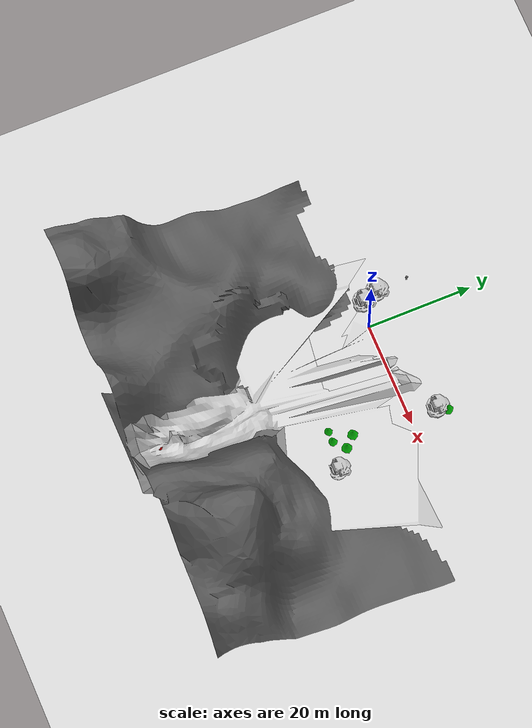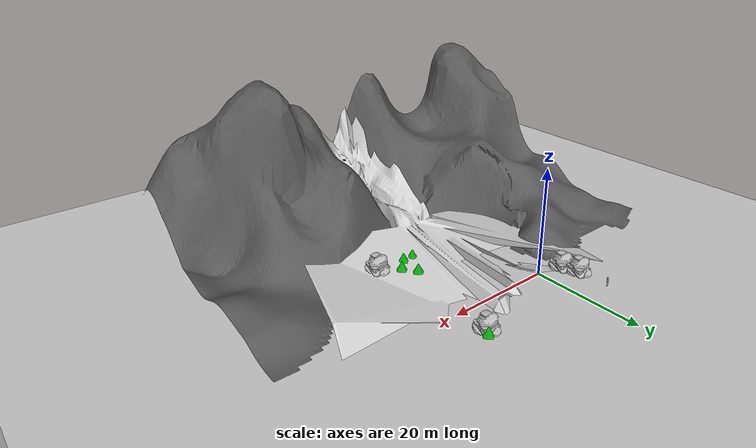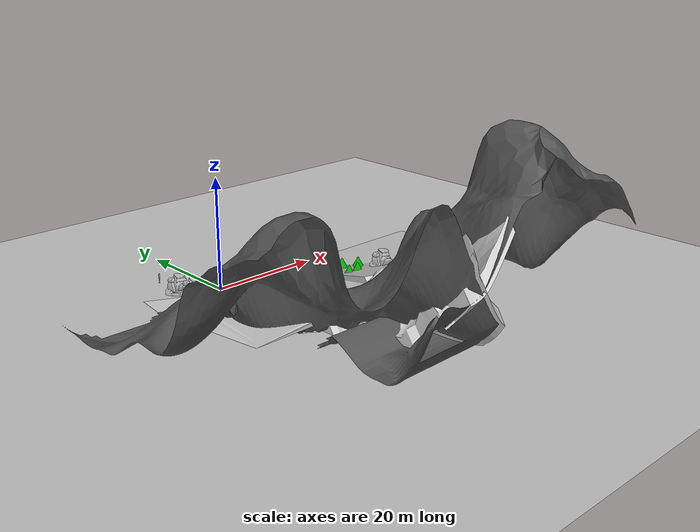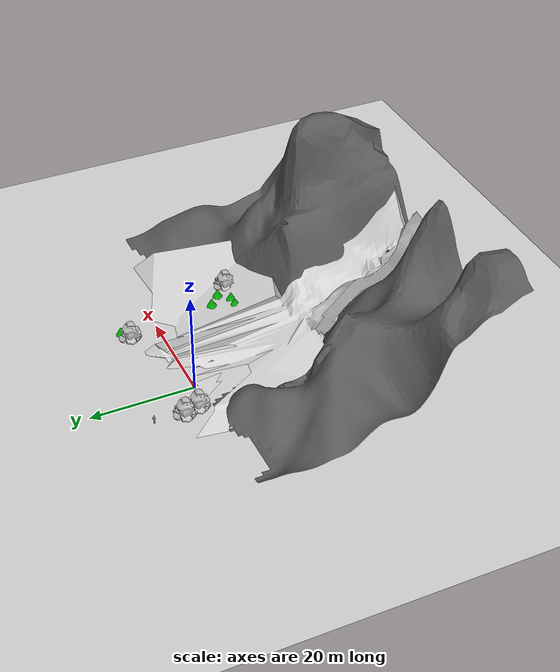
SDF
<sdf version="1.4">
 <world name="mountain_world">
  <physics type="ode"><max_step_size>0.001</max_step_size></physics>
  <scene><sky><clouds><speed>12</speed></clouds></sky></scene>
  <include><uri>model://ground_plane</uri></include>
  <include><uri>model://sun</uri></include>
  <include><name>Landscape</name><uri>model://landscape</uri></include>
  <include><name>Avalanche</name><uri>model://avalanche</uri></include>
  <include>
   <name>smallbigtree01</name>
   <uri>model://smallbigtree</uri>
   <pose>20.50 -13.04 2.38 0 0 0</pose>
  </include>
  <include>
   <name>smallbigtree02</name>
   <uri>model://smallbigtree</uri>
   <pose>18.50 -11.04 2.1 0 0 0</pose>
  </include>
  <include><name>victim01</name><uri>model://victim_house</uri><pose>10.4 -44.89 10.42 0 0 0</pose></include>
  <include>
   <name>smallbigtree04</name>
   <uri>model://smallbigtree</uri>
   <pose>18.50 -15.04 2.38 0 0 0</pose>
  </include>
  <include>
   <name>smallbigtree05</name>
   <uri>model://smallbigtree</uri>
   <pose>16.50 -15.04 2.38 0 0 0</pose>
  </include>
  <include><name>rock01</name><uri>model://rock</uri><pose>23.50 -16.04 2.38 0 0 0</pose></include>
  <include><name>smallbigtree06</name><uri>model://smallbigtree</uri><pose>20 7 0 0 0 0</pose></include>
  <include><name>rock02</name><uri>model://rock</uri><pose>18.75 5.4 0 0 0 0</pose></include>
  <include><name>rock03</name><uri>model://rock</uri><pose>-6 4 0 0 0 0</pose></include>
  <include><name>rock04</name><uri>model://rock</uri><pose>-5 1 0 0 0 0</pose></include>
  <include><name>busy_genius</name><uri>model://genius</uri><pose>-6 10 0 0 0 1</pose></include>
 </world>
</sdf>

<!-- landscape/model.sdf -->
<sdf version="1.5">
  <model name="landscape_model">
<static>
  true
</static>
    <link name="landscape_link">
      <inertial>
        <mass>0.390</mass>
        <inertia>
          <ixx>0.00058</ixx>
          <ixy>0</ixy>
          <ixz>0</ixz>
          <iyy>0.00058</iyy>
          <iyz>0</iyz>
          <izz>0.00019</izz>
        </inertia>
      </inertial>
      <collision name="landscape_collision">
        <geometry>
          <mesh>
            <uri>model://landscape/meshes/landscape.dae</uri>
          </mesh>
        </geometry>
        <surface>
          <friction>
            <ode>
              <mu>1.0</mu>
              <mu2>1.0</mu2>
            </ode>
          </friction>
          <contact>
            <ode>
              <kp>10000000.0</kp>
              <kd>1.0</kd>
              <min_depth>0.001</min_depth>
              <max_vel>0.1</max_vel>
            </ode>
          </contact>
        </surface>
      </collision>
      <visual name="landscape_visual">
        <geometry>
          <mesh>
            <uri>model://landscape/meshes/landscape.dae</uri>
          </mesh>
        </geometry>
      </visual>
    </link>
  </model>
</sdf>

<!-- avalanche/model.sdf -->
<sdf version="1.5">
  <model name="avalanche_model">
<static>
  true
</static>
    <link name="avalanche_link">
      <inertial>
        <mass>0.390</mass>
        <inertia>
          <ixx>0.00058</ixx>
          <ixy>0</ixy>
          <ixz>0</ixz>
          <iyy>0.00058</iyy>
          <iyz>0</iyz>
          <izz>0.00019</izz>
        </inertia>
      </inertial>
      <collision name="avalanche_collision">
        <geometry>
          <mesh>
            <uri>model://avalanche/meshes/avalanche.dae</uri>
          </mesh>
        </geometry>
        <surface>
          <friction>
            <ode>
              <mu>1.0</mu>
              <mu2>1.0</mu2>
            </ode>
          </friction>
          <contact>
            <ode>
              <kp>10000000.0</kp>
              <kd>1.0</kd>
              <min_depth>0.001</min_depth>
              <max_vel>0.1</max_vel>
            </ode>
          </contact>
        </surface>
      </collision>
      <visual name="avalanche_visual">
        <geometry>
          <mesh>
            <uri>model://avalanche/meshes/avalanche.dae</uri>
          </mesh>
        </geometry>
      </visual>
    </link>
  </model>
</sdf>

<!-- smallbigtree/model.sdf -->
<sdf version="1.5">
  <model name="smallbigtree_model">
    <static>
      true
    </static>
    <link name="smallbigtree_link">
      <inertial>
        <mass>0.390</mass>
        <inertia>
          <ixx>0.00058</ixx>
          <ixy>0</ixy>
          <ixz>0</ixz>
          <iyy>0.00058</iyy>
          <iyz>0</iyz>
          <izz>0.00019</izz>
        </inertia>
      </inertial>
      <collision name="smallbigtree_collision">
        <geometry>
          <mesh>
            <uri>model://smallbigtree/meshes/smallbigtree.dae</uri>
          </mesh>
        </geometry>
        <surface>
          <friction>
            <ode>
              <mu>1.0</mu>
              <mu2>1.0</mu2>
            </ode>
          </friction>
          <contact>
            <ode>
              <kp>10000000.0</kp>
              <kd>1.0</kd>
              <min_depth>0.001</min_depth>
              <max_vel>0.1</max_vel>
            </ode>
          </contact>
        </surface>
      </collision>
      <visual name="smallbigtree_visual">
        <geometry>
          <mesh>
            <uri>model://smallbigtree/meshes/smallbigtree.dae</uri>
          </mesh>
        </geometry>
      </visual>
    </link>
  </model>
</sdf>

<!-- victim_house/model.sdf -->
<sdf version="1.5">
  <model name="victim_house_model">
    <static>
      true
    </static>
    <link name="victim_house_link">
      <inertial>
        <mass>0.390</mass>
        <inertia>
          <ixx>0.00058</ixx>
          <ixy>0</ixy>
          <ixz>0</ixz>
          <iyy>0.00058</iyy>
          <iyz>0</iyz>
          <izz>0.00019</izz>
        </inertia>
      </inertial>
      <collision name="victim_house_collision">
        <geometry>
          <mesh>
            <uri>model://victim_house/meshes/victim02.dae</uri>
          </mesh>
        </geometry>
        <surface>
          <friction>
            <ode>
              <mu>1.0</mu>
              <mu2>1.0</mu2>
            </ode>
          </friction>
          <contact>
            <ode>
              <kp>10000000.0</kp>
              <kd>1.0</kd>
              <min_depth>0.001</min_depth>
              <max_vel>0.1</max_vel>
            </ode>
          </contact>
        </surface>
      </collision>
      <visual name="victim_house_visual">
        <geometry>
          <mesh>
            <uri>model://victim_house/meshes/victim02.dae</uri>
          </mesh>
        </geometry>
      </visual>
    </link>
  </model>
</sdf>

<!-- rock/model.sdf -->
<sdf version='1.4'>
  <model name="rock">
      <static>1</static>
        <link name='link_1'>
            <visual name='visual'>
            <pose frame=''>0 0 0 0 0 0</pose>
            <geometry>
            <mesh>
                <uri>model://rock/meshes/rock.dae</uri>
                <scale>1.0 1.0 1.0</scale>
            </mesh>
            </geometry>
            <cast_shadows>0</cast_shadows>
            <transparency>0</transparency>
        </visual>

        <collision name='collision'>
            <laser_retro>0</laser_retro>
            <pose frame=''>0 0 0 0 0 0</pose>
            <geometry>
            <mesh>
                <uri>model://rock/meshes/rock.dae</uri>
                <scale>1.0 1.0 1.0</scale>
            </mesh>
            </geometry>
        </collision>
        </link>
  </model>
</sdf>

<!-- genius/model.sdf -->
<sdf version="1.5">
  <model name="genius_model">
    <static>
      true
    </static>
    <link name="genius_link">
      <inertial>
        <mass>0.390</mass>
        <inertia>
          <ixx>0.00058</ixx>
          <ixy>0</ixy>
          <ixz>0</ixz>
          <iyy>0.00058</iyy>
          <iyz>0</iyz>
          <izz>0.00019</izz>
        </inertia>
      </inertial>
      <collision name="genius_collision">
        <geometry>
          <mesh>
            <uri>model://genius/meshes/genius.dae</uri>
          </mesh>
        </geometry>
        <surface>
          <friction>
            <ode>
              <mu>1.0</mu>
              <mu2>1.0</mu2>
            </ode>
          </friction>
          <contact>
            <ode>
              <kp>10000000.0</kp>
              <kd>1.0</kd>
              <min_depth>0.001</min_depth>
              <max_vel>0.1</max_vel>
            </ode>
          </contact>
        </surface>
      </collision>
      <visual name="genius_visual">
        <geometry>
          <mesh>
            <uri>model://genius/meshes/genius.dae</uri>
          </mesh>
        </geometry>
      </visual>
    </link>
  </model>
</sdf>
